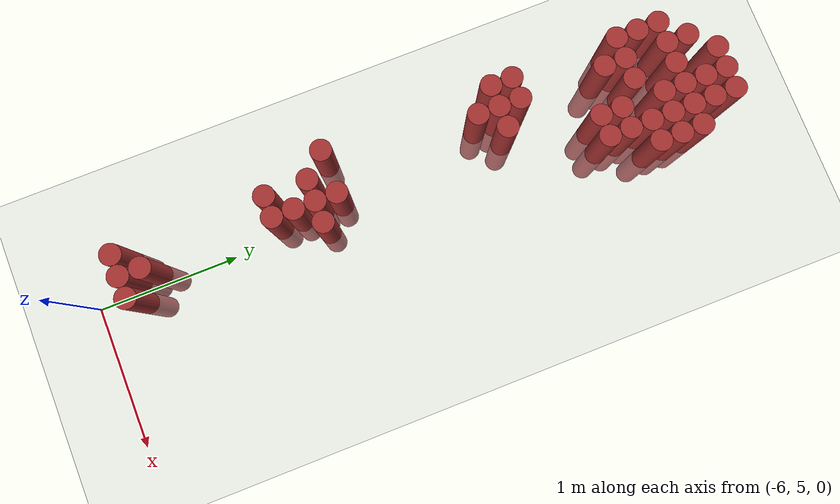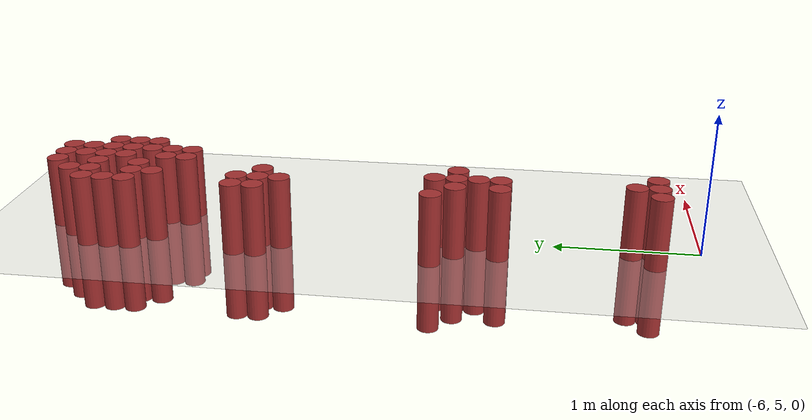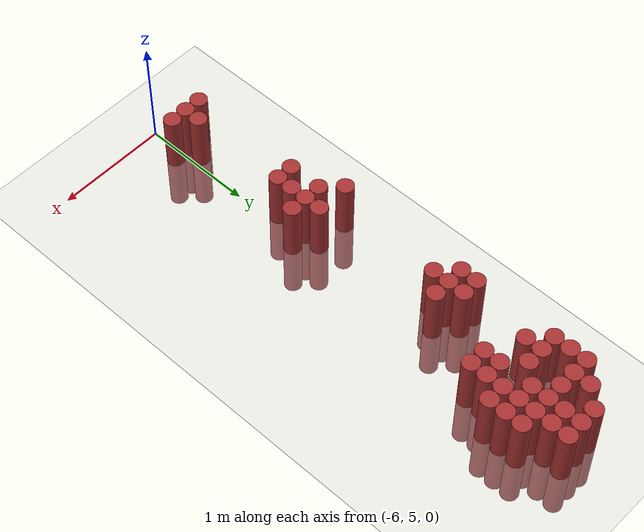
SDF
<sdf version="1.6">
 <world name="default">
  <model name="ground_plane">
   <static>1</static>
   <link name="link">
    <collision name="collision">
     <geometry><plane><normal>0 0 1</normal><size>100 100</size></plane></geometry>
     <surface><friction><ode><mu>100</mu><mu2>50</mu2></ode></friction></surface>
    </collision>
    <visual name="visual">
     <cast_shadows>0</cast_shadows>
     <geometry><plane><normal>0 0 1</normal><size>100 100</size></plane></geometry>
     <material>
      <script><uri>file://media/materials/scripts/gazebo.material</uri><name>Gazebo/Grey</name></script>
     </material>
    </visual>
   </link>
  </model>
  <model name="unit_cylinder_220">
   <static>1</static>
   <pose>-6.375000 6.825000 0.000000 0.000000 0.000000 0.000000</pose>
   <link name="link">
    <inertial>
     <mass>1</mass>
     <inertia><ixx>0.145833</ixx><ixy>0</ixy><ixz>0</ixz><iyy>0.145833</iyy><iyz>0</iyz><izz>0.125</izz></inertia>
    </inertial>
    <collision name="collision">
     <geometry><cylinder><radius>0.075000</radius><length>1</length></cylinder></geometry>
    </collision>
    <visual name="visual">
     <geometry><cylinder><radius>0.075000</radius><length>1</length></cylinder></geometry>
     <material>
      <ambient>0.648000 0.192000 0.192000 1</ambient>
      <diffuse>0.648000 0.192000 0.192000 1</diffuse>
     </material>
     <material>
      <script><name>Gazebo/Grey</name><uri>file://media/materials/scripts/gazebo.material</uri></script>
     </material>
    </visual>
   </link>
  </model>
  <model name="unit_cylinder_221">
   <static>1</static>
   <pose>-6.375000 8.025000 0.000000 0.000000 0.000000 0.000000</pose>
   <link name="link">
    <inertial>
     <mass>1</mass>
     <inertia><ixx>0.145833</ixx><ixy>0</ixy><ixz>0</ixz><iyy>0.145833</iyy><iyz>0</iyz><izz>0.125</izz></inertia>
    </inertial>
    <collision name="collision">
     <geometry><cylinder><radius>0.075000</radius><length>1</length></cylinder></geometry>
    </collision>
    <visual name="visual">
     <geometry><cylinder><radius>0.075000</radius><length>1</length></cylinder></geometry>
     <material>
      <ambient>0.648000 0.192000 0.192000 1</ambient>
      <diffuse>0.648000 0.192000 0.192000 1</diffuse>
     </material>
     <material>
      <script><name>Gazebo/Grey</name><uri>file://media/materials/scripts/gazebo.material</uri></script>
     </material>
    </visual>
   </link>
  </model>
  <model name="unit_cylinder_222">
   <static>1</static>
   <pose>-6.375000 8.175000 0.000000 0.000000 0.000000 0.000000</pose>
   <link name="link">
    <inertial>
     <mass>1</mass>
     <inertia><ixx>0.145833</ixx><ixy>0</ixy><ixz>0</ixz><iyy>0.145833</iyy><iyz>0</iyz><izz>0.125</izz></inertia>
    </inertial>
    <collision name="collision">
     <geometry><cylinder><radius>0.075000</radius><length>1</length></cylinder></geometry>
    </collision>
    <visual name="visual">
     <geometry><cylinder><radius>0.075000</radius><length>1</length></cylinder></geometry>
     <material>
      <ambient>0.648000 0.192000 0.192000 1</ambient>
      <diffuse>0.648000 0.192000 0.192000 1</diffuse>
     </material>
     <material>
      <script><name>Gazebo/Grey</name><uri>file://media/materials/scripts/gazebo.material</uri></script>
     </material>
    </visual>
   </link>
  </model>
  <model name="unit_cylinder_223">
   <static>1</static>
   <pose>-6.375000 8.925000 0.000000 0.000000 0.000000 0.000000</pose>
   <link name="link">
    <inertial>
     <mass>1</mass>
     <inertia><ixx>0.145833</ixx><ixy>0</ixy><ixz>0</ixz><iyy>0.145833</iyy><iyz>0</iyz><izz>0.125</izz></inertia>
    </inertial>
    <collision name="collision">
     <geometry><cylinder><radius>0.075000</radius><length>1</length></cylinder></geometry>
    </collision>
    <visual name="visual">
     <geometry><cylinder><radius>0.075000</radius><length>1</length></cylinder></geometry>
     <material>
      <ambient>0.648000 0.192000 0.192000 1</ambient>
      <diffuse>0.648000 0.192000 0.192000 1</diffuse>
     </material>
     <material>
      <script><name>Gazebo/Grey</name><uri>file://media/materials/scripts/gazebo.material</uri></script>
     </material>
    </visual>
   </link>
  </model>
  <model name="unit_cylinder_224">
   <static>1</static>
   <pose>-6.375000 9.075000 0.000000 0.000000 0.000000 0.000000</pose>
   <link name="link">
    <inertial>
     <mass>1</mass>
     <inertia><ixx>0.145833</ixx><ixy>0</ixy><ixz>0</ixz><iyy>0.145833</iyy><iyz>0</iyz><izz>0.125</izz></inertia>
    </inertial>
    <collision name="collision">
     <geometry><cylinder><radius>0.075000</radius><length>1</length></cylinder></geometry>
    </collision>
    <visual name="visual">
     <geometry><cylinder><radius>0.075000</radius><length>1</length></cylinder></geometry>
     <material>
      <ambient>0.648000 0.192000 0.192000 1</ambient>
      <diffuse>0.648000 0.192000 0.192000 1</diffuse>
     </material>
     <material>
      <script><name>Gazebo/Grey</name><uri>file://media/materials/scripts/gazebo.material</uri></script>
     </material>
    </visual>
   </link>
  </model>
  <model name="unit_cylinder_225">
   <static>1</static>
   <pose>-6.375000 9.225000 0.000000 0.000000 0.000000 0.000000</pose>
   <link name="link">
    <inertial>
     <mass>1</mass>
     <inertia><ixx>0.145833</ixx><ixy>0</ixy><ixz>0</ixz><iyy>0.145833</iyy><iyz>0</iyz><izz>0.125</izz></inertia>
    </inertial>
    <collision name="collision">
     <geometry><cylinder><radius>0.075000</radius><length>1</length></cylinder></geometry>
    </collision>
    <visual name="visual">
     <geometry><cylinder><radius>0.075000</radius><length>1</length></cylinder></geometry>
     <material>
      <ambient>0.648000 0.192000 0.192000 1</ambient>
      <diffuse>0.648000 0.192000 0.192000 1</diffuse>
     </material>
     <material>
      <script><name>Gazebo/Grey</name><uri>file://media/materials/scripts/gazebo.material</uri></script>
     </material>
    </visual>
   </link>
  </model>
  <model name="unit_cylinder_226">
   <static>1</static>
   <pose>-6.225000 5.325000 0.000000 0.000000 0.000000 0.000000</pose>
   <link name="link">
    <inertial>
     <mass>1</mass>
     <inertia><ixx>0.145833</ixx><ixy>0</ixy><ixz>0</ixz><iyy>0.145833</iyy><iyz>0</iyz><izz>0.125</izz></inertia>
    </inertial>
    <collision name="collision">
     <geometry><cylinder><radius>0.075000</radius><length>1</length></cylinder></geometry>
    </collision>
    <visual name="visual">
     <geometry><cylinder><radius>0.075000</radius><length>1</length></cylinder></geometry>
     <material>
      <ambient>0.648000 0.192000 0.192000 1</ambient>
      <diffuse>0.648000 0.192000 0.192000 1</diffuse>
     </material>
     <material>
      <script><name>Gazebo/Grey</name><uri>file://media/materials/scripts/gazebo.material</uri></script>
     </material>
    </visual>
   </link>
  </model>
  <model name="unit_cylinder_227">
   <static>1</static>
   <pose>-6.225000 6.375000 0.000000 0.000000 0.000000 0.000000</pose>
   <link name="link">
    <inertial>
     <mass>1</mass>
     <inertia><ixx>0.145833</ixx><ixy>0</ixy><ixz>0</ixz><iyy>0.145833</iyy><iyz>0</iyz><izz>0.125</izz></inertia>
    </inertial>
    <collision name="collision">
     <geometry><cylinder><radius>0.075000</radius><length>1</length></cylinder></geometry>
    </collision>
    <visual name="visual">
     <geometry><cylinder><radius>0.075000</radius><length>1</length></cylinder></geometry>
     <material>
      <ambient>0.648000 0.192000 0.192000 1</ambient>
      <diffuse>0.648000 0.192000 0.192000 1</diffuse>
     </material>
     <material>
      <script><name>Gazebo/Grey</name><uri>file://media/materials/scripts/gazebo.material</uri></script>
     </material>
    </visual>
   </link>
  </model>
  <model name="unit_cylinder_228">
   <static>1</static>
   <pose>-6.225000 6.675000 0.000000 0.000000 0.000000 0.000000</pose>
   <link name="link">
    <inertial>
     <mass>1</mass>
     <inertia><ixx>0.145833</ixx><ixy>0</ixy><ixz>0</ixz><iyy>0.145833</iyy><iyz>0</iyz><izz>0.125</izz></inertia>
    </inertial>
    <collision name="collision">
     <geometry><cylinder><radius>0.075000</radius><length>1</length></cylinder></geometry>
    </collision>
    <visual name="visual">
     <geometry><cylinder><radius>0.075000</radius><length>1</length></cylinder></geometry>
     <material>
      <ambient>0.648000 0.192000 0.192000 1</ambient>
      <diffuse>0.648000 0.192000 0.192000 1</diffuse>
     </material>
     <material>
      <script><name>Gazebo/Grey</name><uri>file://media/materials/scripts/gazebo.material</uri></script>
     </material>
    </visual>
   </link>
  </model>
  <model name="unit_cylinder_229">
   <static>1</static>
   <pose>-6.225000 7.875000 0.000000 0.000000 0.000000 0.000000</pose>
   <link name="link">
    <inertial>
     <mass>1</mass>
     <inertia><ixx>0.145833</ixx><ixy>0</ixy><ixz>0</ixz><iyy>0.145833</iyy><iyz>0</iyz><izz>0.125</izz></inertia>
    </inertial>
    <collision name="collision">
     <geometry><cylinder><radius>0.075000</radius><length>1</length></cylinder></geometry>
    </collision>
    <visual name="visual">
     <geometry><cylinder><radius>0.075000</radius><length>1</length></cylinder></geometry>
     <material>
      <ambient>0.648000 0.192000 0.192000 1</ambient>
      <diffuse>0.648000 0.192000 0.192000 1</diffuse>
     </material>
     <material>
      <script><name>Gazebo/Grey</name><uri>file://media/materials/scripts/gazebo.material</uri></script>
     </material>
    </visual>
   </link>
  </model>
  <model name="unit_cylinder_230">
   <static>1</static>
   <pose>-6.225000 8.025000 0.000000 0.000000 0.000000 0.000000</pose>
   <link name="link">
    <inertial>
     <mass>1</mass>
     <inertia><ixx>0.145833</ixx><ixy>0</ixy><ixz>0</ixz><iyy>0.145833</iyy><iyz>0</iyz><izz>0.125</izz></inertia>
    </inertial>
    <collision name="collision">
     <geometry><cylinder><radius>0.075000</radius><length>1</length></cylinder></geometry>
    </collision>
    <visual name="visual">
     <geometry><cylinder><radius>0.075000</radius><length>1</length></cylinder></geometry>
     <material>
      <ambient>0.648000 0.192000 0.192000 1</ambient>
      <diffuse>0.648000 0.192000 0.192000 1</diffuse>
     </material>
     <material>
      <script><name>Gazebo/Grey</name><uri>file://media/materials/scripts/gazebo.material</uri></script>
     </material>
    </visual>
   </link>
  </model>
  <model name="unit_cylinder_231">
   <static>1</static>
   <pose>-6.225000 8.175000 0.000000 0.000000 0.000000 0.000000</pose>
   <link name="link">
    <inertial>
     <mass>1</mass>
     <inertia><ixx>0.145833</ixx><ixy>0</ixy><ixz>0</ixz><iyy>0.145833</iyy><iyz>0</iyz><izz>0.125</izz></inertia>
    </inertial>
    <collision name="collision">
     <geometry><cylinder><radius>0.075000</radius><length>1</length></cylinder></geometry>
    </collision>
    <visual name="visual">
     <geometry><cylinder><radius>0.075000</radius><length>1</length></cylinder></geometry>
     <material>
      <ambient>0.648000 0.192000 0.192000 1</ambient>
      <diffuse>0.648000 0.192000 0.192000 1</diffuse>
     </material>
     <material>
      <script><name>Gazebo/Grey</name><uri>file://media/materials/scripts/gazebo.material</uri></script>
     </material>
    </visual>
   </link>
  </model>
  <model name="unit_cylinder_232">
   <static>1</static>
   <pose>-6.225000 8.775000 0.000000 0.000000 0.000000 0.000000</pose>
   <link name="link">
    <inertial>
     <mass>1</mass>
     <inertia><ixx>0.145833</ixx><ixy>0</ixy><ixz>0</ixz><iyy>0.145833</iyy><iyz>0</iyz><izz>0.125</izz></inertia>
    </inertial>
    <collision name="collision">
     <geometry><cylinder><radius>0.075000</radius><length>1</length></cylinder></geometry>
    </collision>
    <visual name="visual">
     <geometry><cylinder><radius>0.075000</radius><length>1</length></cylinder></geometry>
     <material>
      <ambient>0.648000 0.192000 0.192000 1</ambient>
      <diffuse>0.648000 0.192000 0.192000 1</diffuse>
     </material>
     <material>
      <script><name>Gazebo/Grey</name><uri>file://media/materials/scripts/gazebo.material</uri></script>
     </material>
    </visual>
   </link>
  </model>
  <model name="unit_cylinder_233">
   <static>1</static>
   <pose>-6.225000 8.925000 0.000000 0.000000 0.000000 0.000000</pose>
   <link name="link">
    <inertial>
     <mass>1</mass>
     <inertia><ixx>0.145833</ixx><ixy>0</ixy><ixz>0</ixz><iyy>0.145833</iyy><iyz>0</iyz><izz>0.125</izz></inertia>
    </inertial>
    <collision name="collision">
     <geometry><cylinder><radius>0.075000</radius><length>1</length></cylinder></geometry>
    </collision>
    <visual name="visual">
     <geometry><cylinder><radius>0.075000</radius><length>1</length></cylinder></geometry>
     <material>
      <ambient>0.648000 0.192000 0.192000 1</ambient>
      <diffuse>0.648000 0.192000 0.192000 1</diffuse>
     </material>
     <material>
      <script><name>Gazebo/Grey</name><uri>file://media/materials/scripts/gazebo.material</uri></script>
     </material>
    </visual>
   </link>
  </model>
  <model name="unit_cylinder_234">
   <static>1</static>
   <pose>-6.225000 9.225000 0.000000 0.000000 0.000000 0.000000</pose>
   <link name="link">
    <inertial>
     <mass>1</mass>
     <inertia><ixx>0.145833</ixx><ixy>0</ixy><ixz>0</ixz><iyy>0.145833</iyy><iyz>0</iyz><izz>0.125</izz></inertia>
    </inertial>
    <collision name="collision">
     <geometry><cylinder><radius>0.075000</radius><length>1</length></cylinder></geometry>
    </collision>
    <visual name="visual">
     <geometry><cylinder><radius>0.075000</radius><length>1</length></cylinder></geometry>
     <material>
      <ambient>0.648000 0.192000 0.192000 1</ambient>
      <diffuse>0.648000 0.192000 0.192000 1</diffuse>
     </material>
     <material>
      <script><name>Gazebo/Grey</name><uri>file://media/materials/scripts/gazebo.material</uri></script>
     </material>
    </visual>
   </link>
  </model>
  <model name="unit_cylinder_235">
   <static>1</static>
   <pose>-6.225000 9.375000 0.000000 0.000000 0.000000 0.000000</pose>
   <link name="link">
    <inertial>
     <mass>1</mass>
     <inertia><ixx>0.145833</ixx><ixy>0</ixy><ixz>0</ixz><iyy>0.145833</iyy><iyz>0</iyz><izz>0.125</izz></inertia>
    </inertial>
    <collision name="collision">
     <geometry><cylinder><radius>0.075000</radius><length>1</length></cylinder></geometry>
    </collision>
    <visual name="visual">
     <geometry><cylinder><radius>0.075000</radius><length>1</length></cylinder></geometry>
     <material>
      <ambient>0.648000 0.192000 0.192000 1</ambient>
      <diffuse>0.648000 0.192000 0.192000 1</diffuse>
     </material>
     <material>
      <script><name>Gazebo/Grey</name><uri>file://media/materials/scripts/gazebo.material</uri></script>
     </material>
    </visual>
   </link>
  </model>
  <model name="unit_cylinder_237">
   <static>1</static>
   <pose>-6.075000 5.325000 0.000000 0.000000 0.000000 0.000000</pose>
   <link name="link">
    <inertial>
     <mass>1</mass>
     <inertia><ixx>0.145833</ixx><ixy>0</ixy><ixz>0</ixz><iyy>0.145833</iyy><iyz>0</iyz><izz>0.125</izz></inertia>
    </inertial>
    <collision name="collision">
     <geometry><cylinder><radius>0.075000</radius><length>1</length></cylinder></geometry>
    </collision>
    <visual name="visual">
     <geometry><cylinder><radius>0.075000</radius><length>1</length></cylinder></geometry>
     <material>
      <ambient>0.648000 0.192000 0.192000 1</ambient>
      <diffuse>0.648000 0.192000 0.192000 1</diffuse>
     </material>
     <material>
      <script><name>Gazebo/Grey</name><uri>file://media/materials/scripts/gazebo.material</uri></script>
     </material>
    </visual>
   </link>
  </model>
  <model name="unit_cylinder_238">
   <static>1</static>
   <pose>-6.075000 5.475000 0.000000 0.000000 0.000000 0.000000</pose>
   <link name="link">
    <inertial>
     <mass>1</mass>
     <inertia><ixx>0.145833</ixx><ixy>0</ixy><ixz>0</ixz><iyy>0.145833</iyy><iyz>0</iyz><izz>0.125</izz></inertia>
    </inertial>
    <collision name="collision">
     <geometry><cylinder><radius>0.075000</radius><length>1</length></cylinder></geometry>
    </collision>
    <visual name="visual">
     <geometry><cylinder><radius>0.075000</radius><length>1</length></cylinder></geometry>
     <material>
      <ambient>0.648000 0.192000 0.192000 1</ambient>
      <diffuse>0.648000 0.192000 0.192000 1</diffuse>
     </material>
     <material>
      <script><name>Gazebo/Grey</name><uri>file://media/materials/scripts/gazebo.material</uri></script>
     </material>
    </visual>
   </link>
  </model>
  <model name="unit_cylinder_239">
   <static>1</static>
   <pose>-6.075000 6.375000 0.000000 0.000000 0.000000 0.000000</pose>
   <link name="link">
    <inertial>
     <mass>1</mass>
     <inertia><ixx>0.145833</ixx><ixy>0</ixy><ixz>0</ixz><iyy>0.145833</iyy><iyz>0</iyz><izz>0.125</izz></inertia>
    </inertial>
    <collision name="collision">
     <geometry><cylinder><radius>0.075000</radius><length>1</length></cylinder></geometry>
    </collision>
    <visual name="visual">
     <geometry><cylinder><radius>0.075000</radius><length>1</length></cylinder></geometry>
     <material>
      <ambient>0.648000 0.192000 0.192000 1</ambient>
      <diffuse>0.648000 0.192000 0.192000 1</diffuse>
     </material>
     <material>
      <script><name>Gazebo/Grey</name><uri>file://media/materials/scripts/gazebo.material</uri></script>
     </material>
    </visual>
   </link>
  </model>
  <model name="unit_cylinder_240">
   <static>1</static>
   <pose>-6.075000 6.525000 0.000000 0.000000 0.000000 0.000000</pose>
   <link name="link">
    <inertial>
     <mass>1</mass>
     <inertia><ixx>0.145833</ixx><ixy>0</ixy><ixz>0</ixz><iyy>0.145833</iyy><iyz>0</iyz><izz>0.125</izz></inertia>
    </inertial>
    <collision name="collision">
     <geometry><cylinder><radius>0.075000</radius><length>1</length></cylinder></geometry>
    </collision>
    <visual name="visual">
     <geometry><cylinder><radius>0.075000</radius><length>1</length></cylinder></geometry>
     <material>
      <ambient>0.648000 0.192000 0.192000 1</ambient>
      <diffuse>0.648000 0.192000 0.192000 1</diffuse>
     </material>
     <material>
      <script><name>Gazebo/Grey</name><uri>file://media/materials/scripts/gazebo.material</uri></script>
     </material>
    </visual>
   </link>
  </model>
  <model name="unit_cylinder_241">
   <static>1</static>
   <pose>-6.075000 6.675000 0.000000 0.000000 0.000000 0.000000</pose>
   <link name="link">
    <inertial>
     <mass>1</mass>
     <inertia><ixx>0.145833</ixx><ixy>0</ixy><ixz>0</ixz><iyy>0.145833</iyy><iyz>0</iyz><izz>0.125</izz></inertia>
    </inertial>
    <collision name="collision">
     <geometry><cylinder><radius>0.075000</radius><length>1</length></cylinder></geometry>
    </collision>
    <visual name="visual">
     <geometry><cylinder><radius>0.075000</radius><length>1</length></cylinder></geometry>
     <material>
      <ambient>0.648000 0.192000 0.192000 1</ambient>
      <diffuse>0.648000 0.192000 0.192000 1</diffuse>
     </material>
     <material>
      <script><name>Gazebo/Grey</name><uri>file://media/materials/scripts/gazebo.material</uri></script>
     </material>
    </visual>
   </link>
  </model>
  <model name="unit_cylinder_242">
   <static>1</static>
   <pose>-6.075000 6.825000 0.000000 0.000000 0.000000 0.000000</pose>
   <link name="link">
    <inertial>
     <mass>1</mass>
     <inertia><ixx>0.145833</ixx><ixy>0</ixy><ixz>0</ixz><iyy>0.145833</iyy><iyz>0</iyz><izz>0.125</izz></inertia>
    </inertial>
    <collision name="collision">
     <geometry><cylinder><radius>0.075000</radius><length>1</length></cylinder></geometry>
    </collision>
    <visual name="visual">
     <geometry><cylinder><radius>0.075000</radius><length>1</length></cylinder></geometry>
     <material>
      <ambient>0.648000 0.192000 0.192000 1</ambient>
      <diffuse>0.648000 0.192000 0.192000 1</diffuse>
     </material>
     <material>
      <script><name>Gazebo/Grey</name><uri>file://media/materials/scripts/gazebo.material</uri></script>
     </material>
    </visual>
   </link>
  </model>
  <model name="unit_cylinder_243">
   <static>1</static>
   <pose>-6.075000 8.025000 0.000000 0.000000 0.000000 0.000000</pose>
   <link name="link">
    <inertial>
     <mass>1</mass>
     <inertia><ixx>0.145833</ixx><ixy>0</ixy><ixz>0</ixz><iyy>0.145833</iyy><iyz>0</iyz><izz>0.125</izz></inertia>
    </inertial>
    <collision name="collision">
     <geometry><cylinder><radius>0.075000</radius><length>1</length></cylinder></geometry>
    </collision>
    <visual name="visual">
     <geometry><cylinder><radius>0.075000</radius><length>1</length></cylinder></geometry>
     <material>
      <ambient>0.648000 0.192000 0.192000 1</ambient>
      <diffuse>0.648000 0.192000 0.192000 1</diffuse>
     </material>
     <material>
      <script><name>Gazebo/Grey</name><uri>file://media/materials/scripts/gazebo.material</uri></script>
     </material>
    </visual>
   </link>
  </model>
  <model name="unit_cylinder_244">
   <static>1</static>
   <pose>-6.075000 8.925000 0.000000 0.000000 0.000000 0.000000</pose>
   <link name="link">
    <inertial>
     <mass>1</mass>
     <inertia><ixx>0.145833</ixx><ixy>0</ixy><ixz>0</ixz><iyy>0.145833</iyy><iyz>0</iyz><izz>0.125</izz></inertia>
    </inertial>
    <collision name="collision">
     <geometry><cylinder><radius>0.075000</radius><length>1</length></cylinder></geometry>
    </collision>
    <visual name="visual">
     <geometry><cylinder><radius>0.075000</radius><length>1</length></cylinder></geometry>
     <material>
      <ambient>0.648000 0.192000 0.192000 1</ambient>
      <diffuse>0.648000 0.192000 0.192000 1</diffuse>
     </material>
     <material>
      <script><name>Gazebo/Grey</name><uri>file://media/materials/scripts/gazebo.material</uri></script>
     </material>
    </visual>
   </link>
  </model>
  <model name="unit_cylinder_245">
   <static>1</static>
   <pose>-6.075000 9.225000 0.000000 0.000000 0.000000 0.000000</pose>
   <link name="link">
    <inertial>
     <mass>1</mass>
     <inertia><ixx>0.145833</ixx><ixy>0</ixy><ixz>0</ixz><iyy>0.145833</iyy><iyz>0</iyz><izz>0.125</izz></inertia>
    </inertial>
    <collision name="collision">
     <geometry><cylinder><radius>0.075000</radius><length>1</length></cylinder></geometry>
    </collision>
    <visual name="visual">
     <geometry><cylinder><radius>0.075000</radius><length>1</length></cylinder></geometry>
     <material>
      <ambient>0.648000 0.192000 0.192000 1</ambient>
      <diffuse>0.648000 0.192000 0.192000 1</diffuse>
     </material>
     <material>
      <script><name>Gazebo/Grey</name><uri>file://media/materials/scripts/gazebo.material</uri></script>
     </material>
    </visual>
   </link>
  </model>
  <model name="unit_cylinder_246">
   <static>1</static>
   <pose>-6.075000 9.525000 0.000000 0.000000 0.000000 0.000000</pose>
   <link name="link">
    <inertial>
     <mass>1</mass>
     <inertia><ixx>0.145833</ixx><ixy>0</ixy><ixz>0</ixz><iyy>0.145833</iyy><iyz>0</iyz><izz>0.125</izz></inertia>
    </inertial>
    <collision name="collision">
     <geometry><cylinder><radius>0.075000</radius><length>1</length></cylinder></geometry>
    </collision>
    <visual name="visual">
     <geometry><cylinder><radius>0.075000</radius><length>1</length></cylinder></geometry>
     <material>
      <ambient>0.648000 0.192000 0.192000 1</ambient>
      <diffuse>0.648000 0.192000 0.192000 1</diffuse>
     </material>
     <material>
      <script><name>Gazebo/Grey</name><uri>file://media/materials/scripts/gazebo.material</uri></script>
     </material>
    </visual>
   </link>
  </model>
  <model name="unit_cylinder_247">
   <static>1</static>
   <pose>-5.925000 5.325000 0.000000 0.000000 0.000000 0.000000</pose>
   <link name="link">
    <inertial>
     <mass>1</mass>
     <inertia><ixx>0.145833</ixx><ixy>0</ixy><ixz>0</ixz><iyy>0.145833</iyy><iyz>0</iyz><izz>0.125</izz></inertia>
    </inertial>
    <collision name="collision">
     <geometry><cylinder><radius>0.075000</radius><length>1</length></cylinder></geometry>
    </collision>
    <visual name="visual">
     <geometry><cylinder><radius>0.075000</radius><length>1</length></cylinder></geometry>
     <material>
      <ambient>0.648000 0.192000 0.192000 1</ambient>
      <diffuse>0.648000 0.192000 0.192000 1</diffuse>
     </material>
     <material>
      <script><name>Gazebo/Grey</name><uri>file://media/materials/scripts/gazebo.material</uri></script>
     </material>
    </visual>
   </link>
  </model>
  <model name="unit_cylinder_248">
   <static>1</static>
   <pose>-5.925000 6.675000 0.000000 0.000000 0.000000 0.000000</pose>
   <link name="link">
    <inertial>
     <mass>1</mass>
     <inertia><ixx>0.145833</ixx><ixy>0</ixy><ixz>0</ixz><iyy>0.145833</iyy><iyz>0</iyz><izz>0.125</izz></inertia>
    </inertial>
    <collision name="collision">
     <geometry><cylinder><radius>0.075000</radius><length>1</length></cylinder></geometry>
    </collision>
    <visual name="visual">
     <geometry><cylinder><radius>0.075000</radius><length>1</length></cylinder></geometry>
     <material>
      <ambient>0.648000 0.192000 0.192000 1</ambient>
      <diffuse>0.648000 0.192000 0.192000 1</diffuse>
     </material>
     <material>
      <script><name>Gazebo/Grey</name><uri>file://media/materials/scripts/gazebo.material</uri></script>
     </material>
    </visual>
   </link>
  </model>
  <model name="unit_cylinder_249">
   <static>1</static>
   <pose>-5.925000 8.625000 0.000000 0.000000 0.000000 0.000000</pose>
   <link name="link">
    <inertial>
     <mass>1</mass>
     <inertia><ixx>0.145833</ixx><ixy>0</ixy><ixz>0</ixz><iyy>0.145833</iyy><iyz>0</iyz><izz>0.125</izz></inertia>
    </inertial>
    <collision name="collision">
     <geometry><cylinder><radius>0.075000</radius><length>1</length></cylinder></geometry>
    </collision>
    <visual name="visual">
     <geometry><cylinder><radius>0.075000</radius><length>1</length></cylinder></geometry>
     <material>
      <ambient>0.648000 0.192000 0.192000 1</ambient>
      <diffuse>0.648000 0.192000 0.192000 1</diffuse>
     </material>
     <material>
      <script><name>Gazebo/Grey</name><uri>file://media/materials/scripts/gazebo.material</uri></script>
     </material>
    </visual>
   </link>
  </model>
  <model name="unit_cylinder_250">
   <static>1</static>
   <pose>-5.925000 8.775000 0.000000 0.000000 0.000000 0.000000</pose>
   <link name="link">
    <inertial>
     <mass>1</mass>
     <inertia><ixx>0.145833</ixx><ixy>0</ixy><ixz>0</ixz><iyy>0.145833</iyy><iyz>0</iyz><izz>0.125</izz></inertia>
    </inertial>
    <collision name="collision">
     <geometry><cylinder><radius>0.075000</radius><length>1</length></cylinder></geometry>
    </collision>
    <visual name="visual">
     <geometry><cylinder><radius>0.075000</radius><length>1</length></cylinder></geometry>
     <material>
      <ambient>0.648000 0.192000 0.192000 1</ambient>
      <diffuse>0.648000 0.192000 0.192000 1</diffuse>
     </material>
     <material>
      <script><name>Gazebo/Grey</name><uri>file://media/materials/scripts/gazebo.material</uri></script>
     </material>
    </visual>
   </link>
  </model>
  <model name="unit_cylinder_251">
   <static>1</static>
   <pose>-5.925000 9.075000 0.000000 0.000000 0.000000 0.000000</pose>
   <link name="link">
    <inertial>
     <mass>1</mass>
     <inertia><ixx>0.145833</ixx><ixy>0</ixy><ixz>0</ixz><iyy>0.145833</iyy><iyz>0</iyz><izz>0.125</izz></inertia>
    </inertial>
    <collision name="collision">
     <geometry><cylinder><radius>0.075000</radius><length>1</length></cylinder></geometry>
    </collision>
    <visual name="visual">
     <geometry><cylinder><radius>0.075000</radius><length>1</length></cylinder></geometry>
     <material>
      <ambient>0.648000 0.192000 0.192000 1</ambient>
      <diffuse>0.648000 0.192000 0.192000 1</diffuse>
     </material>
     <material>
      <script><name>Gazebo/Grey</name><uri>file://media/materials/scripts/gazebo.material</uri></script>
     </material>
    </visual>
   </link>
  </model>
  <model name="unit_cylinder_252">
   <static>1</static>
   <pose>-5.925000 9.225000 0.000000 0.000000 0.000000 0.000000</pose>
   <link name="link">
    <inertial>
     <mass>1</mass>
     <inertia><ixx>0.145833</ixx><ixy>0</ixy><ixz>0</ixz><iyy>0.145833</iyy><iyz>0</iyz><izz>0.125</izz></inertia>
    </inertial>
    <collision name="collision">
     <geometry><cylinder><radius>0.075000</radius><length>1</length></cylinder></geometry>
    </collision>
    <visual name="visual">
     <geometry><cylinder><radius>0.075000</radius><length>1</length></cylinder></geometry>
     <material>
      <ambient>0.648000 0.192000 0.192000 1</ambient>
      <diffuse>0.648000 0.192000 0.192000 1</diffuse>
     </material>
     <material>
      <script><name>Gazebo/Grey</name><uri>file://media/materials/scripts/gazebo.material</uri></script>
     </material>
    </visual>
   </link>
  </model>
  <model name="unit_cylinder_253">
   <static>1</static>
   <pose>-5.925000 9.375000 0.000000 0.000000 0.000000 0.000000</pose>
   <link name="link">
    <inertial>
     <mass>1</mass>
     <inertia><ixx>0.145833</ixx><ixy>0</ixy><ixz>0</ixz><iyy>0.145833</iyy><iyz>0</iyz><izz>0.125</izz></inertia>
    </inertial>
    <collision name="collision">
     <geometry><cylinder><radius>0.075000</radius><length>1</length></cylinder></geometry>
    </collision>
    <visual name="visual">
     <geometry><cylinder><radius>0.075000</radius><length>1</length></cylinder></geometry>
     <material>
      <ambient>0.648000 0.192000 0.192000 1</ambient>
      <diffuse>0.648000 0.192000 0.192000 1</diffuse>
     </material>
     <material>
      <script><name>Gazebo/Grey</name><uri>file://media/materials/scripts/gazebo.material</uri></script>
     </material>
    </visual>
   </link>
  </model>
  <model name="unit_cylinder_254">
   <static>1</static>
   <pose>-5.925000 9.525000 0.000000 0.000000 0.000000 0.000000</pose>
   <link name="link">
    <inertial>
     <mass>1</mass>
     <inertia><ixx>0.145833</ixx><ixy>0</ixy><ixz>0</ixz><iyy>0.145833</iyy><iyz>0</iyz><izz>0.125</izz></inertia>
    </inertial>
    <collision name="collision">
     <geometry><cylinder><radius>0.075000</radius><length>1</length></cylinder></geometry>
    </collision>
    <visual name="visual">
     <geometry><cylinder><radius>0.075000</radius><length>1</length></cylinder></geometry>
     <material>
      <ambient>0.648000 0.192000 0.192000 1</ambient>
      <diffuse>0.648000 0.192000 0.192000 1</diffuse>
     </material>
     <material>
      <script><name>Gazebo/Grey</name><uri>file://media/materials/scripts/gazebo.material</uri></script>
     </material>
    </visual>
   </link>
  </model>
  <model name="unit_cylinder_255">
   <static>1</static>
   <pose>-5.775000 8.625000 0.000000 0.000000 0.000000 0.000000</pose>
   <link name="link">
    <inertial>
     <mass>1</mass>
     <inertia><ixx>0.145833</ixx><ixy>0</ixy><ixz>0</ixz><iyy>0.145833</iyy><iyz>0</iyz><izz>0.125</izz></inertia>
    </inertial>
    <collision name="collision">
     <geometry><cylinder><radius>0.075000</radius><length>1</length></cylinder></geometry>
    </collision>
    <visual name="visual">
     <geometry><cylinder><radius>0.075000</radius><length>1</length></cylinder></geometry>
     <material>
      <ambient>0.648000 0.192000 0.192000 1</ambient>
      <diffuse>0.648000 0.192000 0.192000 1</diffuse>
     </material>
     <material>
      <script><name>Gazebo/Grey</name><uri>file://media/materials/scripts/gazebo.material</uri></script>
     </material>
    </visual>
   </link>
  </model>
  <model name="unit_cylinder_256">
   <static>1</static>
   <pose>-5.775000 8.775000 0.000000 0.000000 0.000000 0.000000</pose>
   <link name="link">
    <inertial>
     <mass>1</mass>
     <inertia><ixx>0.145833</ixx><ixy>0</ixy><ixz>0</ixz><iyy>0.145833</iyy><iyz>0</iyz><izz>0.125</izz></inertia>
    </inertial>
    <collision name="collision">
     <geometry><cylinder><radius>0.075000</radius><length>1</length></cylinder></geometry>
    </collision>
    <visual name="visual">
     <geometry><cylinder><radius>0.075000</radius><length>1</length></cylinder></geometry>
     <material>
      <ambient>0.648000 0.192000 0.192000 1</ambient>
      <diffuse>0.648000 0.192000 0.192000 1</diffuse>
     </material>
     <material>
      <script><name>Gazebo/Grey</name><uri>file://media/materials/scripts/gazebo.material</uri></script>
     </material>
    </visual>
   </link>
  </model>
  <model name="unit_cylinder_257">
   <static>1</static>
   <pose>-5.775000 8.925000 0.000000 0.000000 0.000000 0.000000</pose>
   <link name="link">
    <inertial>
     <mass>1</mass>
     <inertia><ixx>0.145833</ixx><ixy>0</ixy><ixz>0</ixz><iyy>0.145833</iyy><iyz>0</iyz><izz>0.125</izz></inertia>
    </inertial>
    <collision name="collision">
     <geometry><cylinder><radius>0.075000</radius><length>1</length></cylinder></geometry>
    </collision>
    <visual name="visual">
     <geometry><cylinder><radius>0.075000</radius><length>1</length></cylinder></geometry>
     <material>
      <ambient>0.648000 0.192000 0.192000 1</ambient>
      <diffuse>0.648000 0.192000 0.192000 1</diffuse>
     </material>
     <material>
      <script><name>Gazebo/Grey</name><uri>file://media/materials/scripts/gazebo.material</uri></script>
     </material>
    </visual>
   </link>
  </model>
  <model name="unit_cylinder_258">
   <static>1</static>
   <pose>-5.775000 9.075000 0.000000 0.000000 0.000000 0.000000</pose>
   <link name="link">
    <inertial>
     <mass>1</mass>
     <inertia><ixx>0.145833</ixx><ixy>0</ixy><ixz>0</ixz><iyy>0.145833</iyy><iyz>0</iyz><izz>0.125</izz></inertia>
    </inertial>
    <collision name="collision">
     <geometry><cylinder><radius>0.075000</radius><length>1</length></cylinder></geometry>
    </collision>
    <visual name="visual">
     <geometry><cylinder><radius>0.075000</radius><length>1</length></cylinder></geometry>
     <material>
      <ambient>0.648000 0.192000 0.192000 1</ambient>
      <diffuse>0.648000 0.192000 0.192000 1</diffuse>
     </material>
     <material>
      <script><name>Gazebo/Grey</name><uri>file://media/materials/scripts/gazebo.material</uri></script>
     </material>
    </visual>
   </link>
  </model>
  <model name="unit_cylinder_259">
   <static>1</static>
   <pose>-5.775000 9.225000 0.000000 0.000000 0.000000 0.000000</pose>
   <link name="link">
    <inertial>
     <mass>1</mass>
     <inertia><ixx>0.145833</ixx><ixy>0</ixy><ixz>0</ixz><iyy>0.145833</iyy><iyz>0</iyz><izz>0.125</izz></inertia>
    </inertial>
    <collision name="collision">
     <geometry><cylinder><radius>0.075000</radius><length>1</length></cylinder></geometry>
    </collision>
    <visual name="visual">
     <geometry><cylinder><radius>0.075000</radius><length>1</length></cylinder></geometry>
     <material>
      <ambient>0.648000 0.192000 0.192000 1</ambient>
      <diffuse>0.648000 0.192000 0.192000 1</diffuse>
     </material>
     <material>
      <script><name>Gazebo/Grey</name><uri>file://media/materials/scripts/gazebo.material</uri></script>
     </material>
    </visual>
   </link>
  </model>
  <model name="unit_cylinder_260">
   <static>1</static>
   <pose>-5.775000 9.375000 0.000000 0.000000 0.000000 0.000000</pose>
   <link name="link">
    <inertial>
     <mass>1</mass>
     <inertia><ixx>0.145833</ixx><ixy>0</ixy><ixz>0</ixz><iyy>0.145833</iyy><iyz>0</iyz><izz>0.125</izz></inertia>
    </inertial>
    <collision name="collision">
     <geometry><cylinder><radius>0.075000</radius><length>1</length></cylinder></geometry>
    </collision>
    <visual name="visual">
     <geometry><cylinder><radius>0.075000</radius><length>1</length></cylinder></geometry>
     <material>
      <ambient>0.648000 0.192000 0.192000 1</ambient>
      <diffuse>0.648000 0.192000 0.192000 1</diffuse>
     </material>
     <material>
      <script><name>Gazebo/Grey</name><uri>file://media/materials/scripts/gazebo.material</uri></script>
     </material>
    </visual>
   </link>
  </model>
  <model name="unit_cylinder_261">
   <static>1</static>
   <pose>-5.775000 9.525000 0.000000 0.000000 0.000000 0.000000</pose>
   <link name="link">
    <inertial>
     <mass>1</mass>
     <inertia><ixx>0.145833</ixx><ixy>0</ixy><ixz>0</ixz><iyy>0.145833</iyy><iyz>0</iyz><izz>0.125</izz></inertia>
    </inertial>
    <collision name="collision">
     <geometry><cylinder><radius>0.075000</radius><length>1</length></cylinder></geometry>
    </collision>
    <visual name="visual">
     <geometry><cylinder><radius>0.075000</radius><length>1</length></cylinder></geometry>
     <material>
      <ambient>0.648000 0.192000 0.192000 1</ambient>
      <diffuse>0.648000 0.192000 0.192000 1</diffuse>
     </material>
     <material>
      <script><name>Gazebo/Grey</name><uri>file://media/materials/scripts/gazebo.material</uri></script>
     </material>
    </visual>
   </link>
  </model>
  <model name="unit_cylinder_262">
   <static>1</static>
   <pose>-5.625000 8.925000 0.000000 0.000000 0.000000 0.000000</pose>
   <link name="link">
    <inertial>
     <mass>1</mass>
     <inertia><ixx>0.145833</ixx><ixy>0</ixy><ixz>0</ixz><iyy>0.145833</iyy><iyz>0</iyz><izz>0.125</izz></inertia>
    </inertial>
    <collision name="collision">
     <geometry><cylinder><radius>0.075000</radius><length>1</length></cylinder></geometry>
    </collision>
    <visual name="visual">
     <geometry><cylinder><radius>0.075000</radius><length>1</length></cylinder></geometry>
     <material>
      <ambient>0.648000 0.192000 0.192000 1</ambient>
      <diffuse>0.648000 0.192000 0.192000 1</diffuse>
     </material>
     <material>
      <script><name>Gazebo/Grey</name><uri>file://media/materials/scripts/gazebo.material</uri></script>
     </material>
    </visual>
   </link>
  </model>
  <model name="unit_cylinder_263">
   <static>1</static>
   <pose>-5.625000 9.075000 0.000000 0.000000 0.000000 0.000000</pose>
   <link name="link">
    <inertial>
     <mass>1</mass>
     <inertia><ixx>0.145833</ixx><ixy>0</ixy><ixz>0</ixz><iyy>0.145833</iyy><iyz>0</iyz><izz>0.125</izz></inertia>
    </inertial>
    <collision name="collision">
     <geometry><cylinder><radius>0.075000</radius><length>1</length></cylinder></geometry>
    </collision>
    <visual name="visual">
     <geometry><cylinder><radius>0.075000</radius><length>1</length></cylinder></geometry>
     <material>
      <ambient>0.648000 0.192000 0.192000 1</ambient>
      <diffuse>0.648000 0.192000 0.192000 1</diffuse>
     </material>
     <material>
      <script><name>Gazebo/Grey</name><uri>file://media/materials/scripts/gazebo.material</uri></script>
     </material>
    </visual>
   </link>
  </model>
  <model name="unit_cylinder_264">
   <static>1</static>
   <pose>-5.625000 9.225000 0.000000 0.000000 0.000000 0.000000</pose>
   <link name="link">
    <inertial>
     <mass>1</mass>
     <inertia><ixx>0.145833</ixx><ixy>0</ixy><ixz>0</ixz><iyy>0.145833</iyy><iyz>0</iyz><izz>0.125</izz></inertia>
    </inertial>
    <collision name="collision">
     <geometry><cylinder><radius>0.075000</radius><length>1</length></cylinder></geometry>
    </collision>
    <visual name="visual">
     <geometry><cylinder><radius>0.075000</radius><length>1</length></cylinder></geometry>
     <material>
      <ambient>0.648000 0.192000 0.192000 1</ambient>
      <diffuse>0.648000 0.192000 0.192000 1</diffuse>
     </material>
     <material>
      <script><name>Gazebo/Grey</name><uri>file://media/materials/scripts/gazebo.material</uri></script>
     </material>
    </visual>
   </link>
  </model>
 </world>
</sdf>
